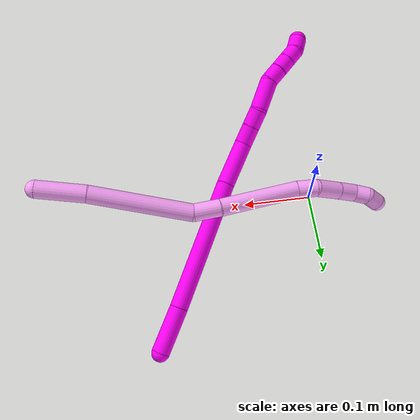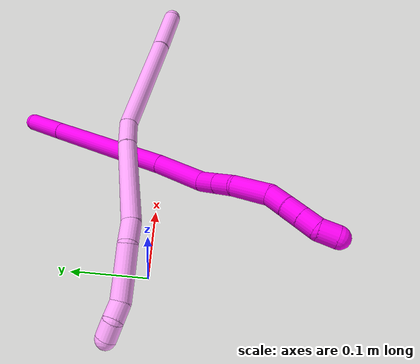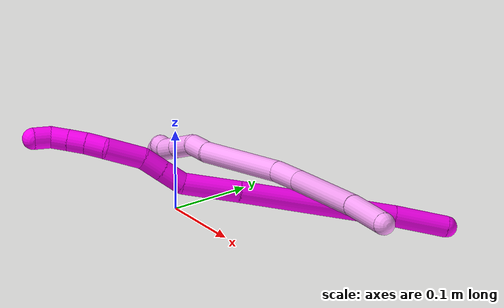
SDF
<sdf version="1.7">
 <world name="default">
  <model name="4">
   <static>0</static>
   <link name="4">
    <collision name="collision-cylinder-e_1_1_4">
     <pose>-0.001959 0.001159 -0.034465 -3.10797 -0.056756 2.07213</pose>
     <geometry><cylinder><radius>0.0125</radius><length>0.069081</length></cylinder></geometry>
     <surface>
      <friction><ode><mu>1.16</mu><mu2>1.16</mu2><slip1>0</slip1><slip2>0</slip2></ode></friction>
      <contact><ode><kp>1e+06</kp><kd>1</kd><max_vel>0</max_vel><min_depth>0.001</min_depth></ode></contact>
     </surface>
    </collision>
    <visual name="visual-cylinder-e_1_1_4">
     <pose>-0.001959 0.001159 -0.034465 -3.10797 -0.056756 2.07213</pose>
     <geometry><cylinder><radius>0.0125</radius><length>0.069081</length></cylinder></geometry>
     <material><ambient>1 0.65098 0.996078 1</ambient></material>
    </visual>
    <collision name="collision-cylinder-e_2_4_5">
     <pose>-0.003462 0.01091 -0.140847 -3.02269 0.006311 -0.105933</pose>
     <geometry><cylinder><radius>0.0125</radius><length>0.144857</length></cylinder></geometry>
     <surface>
      <friction><ode><mu>1.16</mu><mu2>1.16</mu2><slip1>0</slip1><slip2>0</slip2></ode></friction>
      <contact><ode><kp>1e+06</kp><kd>1</kd><max_vel>0</max_vel><min_depth>0.001</min_depth></ode></contact>
     </surface>
    </collision>
    <visual name="visual-cylinder-e_2_4_5">
     <pose>-0.003462 0.01091 -0.140847 -3.02269 0.006311 -0.105933</pose>
     <geometry><cylinder><radius>0.0125</radius><length>0.144857</length></cylinder></geometry>
     <material><ambient>1 0.65098 0.996078 1</ambient></material>
    </visual>
    <collision name="collision-cylinder-e_3_5_6">
     <pose>-0.003059 0.014964 -0.231105 2.89907 -0.002868 -0.023535</pose>
     <geometry><cylinder><radius>0.0125</radius><length>0.037791</length></cylinder></geometry>
     <surface>
      <friction><ode><mu>1.16</mu><mu2>1.16</mu2><slip1>0</slip1><slip2>0</slip2></ode></friction>
      <contact><ode><kp>1e+06</kp><kd>1</kd><max_vel>0</max_vel><min_depth>0.001</min_depth></ode></contact>
     </surface>
    </collision>
    <visual name="visual-cylinder-e_3_5_6">
     <pose>-0.003059 0.014964 -0.231105 2.89907 -0.002868 -0.023535</pose>
     <geometry><cylinder><radius>0.0125</radius><length>0.037791</length></cylinder></geometry>
     <material><ambient>1 0.65098 0.996078 1</ambient></material>
    </visual>
    <collision name="collision-cylinder-e_4_6_7">
     <pose>0.002883 -0.00504 -0.303973 2.8652 0.105405 0.725036</pose>
     <geometry><cylinder><radius>0.0125</radius><length>0.113987</length></cylinder></geometry>
     <surface>
      <friction><ode><mu>1.16</mu><mu2>1.16</mu2><slip1>0</slip1><slip2>0</slip2></ode></friction>
      <contact><ode><kp>1e+06</kp><kd>1</kd><max_vel>0</max_vel><min_depth>0.001</min_depth></ode></contact>
     </surface>
    </collision>
    <visual name="visual-cylinder-e_4_6_7">
     <pose>0.002883 -0.00504 -0.303973 2.8652 0.105405 0.725036</pose>
     <geometry><cylinder><radius>0.0125</radius><length>0.113987</length></cylinder></geometry>
     <material><ambient>1 0.65098 0.996078 1</ambient></material>
    </visual>
    <collision name="collision-cylinder-e_5_7_8">
     <pose>0.008246 -0.022665 -0.372652 2.99023 -0.044212 -0.567429</pose>
     <geometry><cylinder><radius>0.0125</radius><length>0.028661</length></cylinder></geometry>
     <surface>
      <friction><ode><mu>1.16</mu><mu2>1.16</mu2><slip1>0</slip1><slip2>0</slip2></ode></friction>
      <contact><ode><kp>1e+06</kp><kd>1</kd><max_vel>0</max_vel><min_depth>0.001</min_depth></ode></contact>
     </surface>
    </collision>
    <visual name="visual-cylinder-e_5_7_8">
     <pose>0.008246 -0.022665 -0.372652 2.99023 -0.044212 -0.567429</pose>
     <geometry><cylinder><radius>0.0125</radius><length>0.028661</length></cylinder></geometry>
     <material><ambient>1 0.65098 0.996078 1</ambient></material>
    </visual>
    <collision name="collision-cylinder-e_6_8_9">
     <pose>0.012959 -0.023766 -0.404096 -3.08052 0.299349 -2.7419</pose>
     <geometry><cylinder><radius>0.0125</radius><length>0.036258</length></cylinder></geometry>
     <surface>
      <friction><ode><mu>1.16</mu><mu2>1.16</mu2><slip1>0</slip1><slip2>0</slip2></ode></friction>
      <contact><ode><kp>1e+06</kp><kd>1</kd><max_vel>0</max_vel><min_depth>0.001</min_depth></ode></contact>
     </surface>
    </collision>
    <visual name="visual-cylinder-e_6_8_9">
     <pose>0.012959 -0.023766 -0.404096 -3.08052 0.299349 -2.7419</pose>
     <geometry><cylinder><radius>0.0125</radius><length>0.036258</length></cylinder></geometry>
     <material><ambient>1 0.65098 0.996078 1</ambient></material>
    </visual>
    <collision name="collision-cylinder-e_7_9_10">
     <pose>0.0223 -0.021784 -0.434764 -3.07258 0.289531 -2.6766</pose>
     <geometry><cylinder><radius>0.0125</radius><length>0.027985</length></cylinder></geometry>
     <surface>
      <friction><ode><mu>1.16</mu><mu2>1.16</mu2><slip1>0</slip1><slip2>0</slip2></ode></friction>
      <contact><ode><kp>1e+06</kp><kd>1</kd><max_vel>0</max_vel><min_depth>0.001</min_depth></ode></contact>
     </surface>
    </collision>
    <visual name="visual-cylinder-e_7_9_10">
     <pose>0.0223 -0.021784 -0.434764 -3.07258 0.289531 -2.6766</pose>
     <geometry><cylinder><radius>0.0125</radius><length>0.027985</length></cylinder></geometry>
     <material><ambient>1 0.65098 0.996078 1</ambient></material>
    </visual>
    <collision name="collision-cylinder-e_8_10_11">
     <pose>0.025591 -0.019331 -0.458492 -2.99495 -0.067179 0.858086</pose>
     <geometry><cylinder><radius>0.0125</radius><length>0.020972</length></cylinder></geometry>
     <surface>
      <friction><ode><mu>1.16</mu><mu2>1.16</mu2><slip1>0</slip1><slip2>0</slip2></ode></friction>
      <contact><ode><kp>1e+06</kp><kd>1</kd><max_vel>0</max_vel><min_depth>0.001</min_depth></ode></contact>
     </surface>
    </collision>
    <visual name="visual-cylinder-e_8_10_11">
     <pose>0.025591 -0.019331 -0.458492 -2.99495 -0.067179 0.858086</pose>
     <geometry><cylinder><radius>0.0125</radius><length>0.020972</length></cylinder></geometry>
     <material><ambient>1 0.65098 0.996078 1</ambient></material>
    </visual>
    <collision name="collision-cylinder-e_9_11_2">
     <pose>0.028324 -0.013405 -0.477385 -2.66621 0.343466 -1.24263</pose>
     <geometry><cylinder><radius>0.0125</radius><length>0.020408</length></cylinder></geometry>
     <surface>
      <friction><ode><mu>1.16</mu><mu2>1.16</mu2><slip1>0</slip1><slip2>0</slip2></ode></friction>
      <contact><ode><kp>1e+06</kp><kd>1</kd><max_vel>0</max_vel><min_depth>0.001</min_depth></ode></contact>
     </surface>
    </collision>
    <visual name="visual-cylinder-e_9_11_2">
     <pose>0.028324 -0.013405 -0.477385 -2.66621 0.343466 -1.24263</pose>
     <geometry><cylinder><radius>0.0125</radius><length>0.020408</length></cylinder></geometry>
     <material><ambient>1 0.65098 0.996078 1</ambient></material>
    </visual>
    <collision name="collision-sphere-2">
     <pose>0.03176 -0.009008 -0.485928 0 -0 0</pose>
     <geometry><sphere><radius>0.0125</radius></sphere></geometry>
     <surface>
      <friction><ode><mu>1.16</mu><mu2>1.16</mu2><slip1>0</slip1><slip2>0</slip2></ode></friction>
      <contact><ode><kp>1e+06</kp><kd>1</kd><max_vel>0</max_vel><min_depth>0.001</min_depth></ode></contact>
     </surface>
    </collision>
    <visual name="visual-sphere-2">
     <pose>0.03176 -0.009008 -0.485928 0 -0 0</pose>
     <geometry><sphere><radius>0.0125</radius></sphere></geometry>
     <material><ambient>1 0.65098 0.996078 1</ambient></material>
    </visual>
    <collision name="collision-sphere-11">
     <pose>0.024887 -0.017802 -0.468842 0 -0 0</pose>
     <geometry><sphere><radius>0.0125</radius></sphere></geometry>
     <surface>
      <friction><ode><mu>1.16</mu><mu2>1.16</mu2><slip1>0</slip1><slip2>0</slip2></ode></friction>
      <contact><ode><kp>1e+06</kp><kd>1</kd><max_vel>0</max_vel><min_depth>0.001</min_depth></ode></contact>
     </surface>
    </collision>
    <visual name="visual-sphere-11">
     <pose>0.024887 -0.017802 -0.468842 0 -0 0</pose>
     <geometry><sphere><radius>0.0125</radius></sphere></geometry>
     <material><ambient>1 0.65098 0.996078 1</ambient></material>
    </visual>
    <collision name="collision-sphere-10">
     <pose>0.026295 -0.02086 -0.448142 0 -0 0</pose>
     <geometry><sphere><radius>0.0125</radius></sphere></geometry>
     <surface>
      <friction><ode><mu>1.16</mu><mu2>1.16</mu2><slip1>0</slip1><slip2>0</slip2></ode></friction>
      <contact><ode><kp>1e+06</kp><kd>1</kd><max_vel>0</max_vel><min_depth>0.001</min_depth></ode></contact>
     </surface>
    </collision>
    <visual name="visual-sphere-10">
     <pose>0.026295 -0.02086 -0.448142 0 -0 0</pose>
     <geometry><sphere><radius>0.0125</radius></sphere></geometry>
     <material><ambient>1 0.65098 0.996078 1</ambient></material>
    </visual>
    <collision name="collision-sphere-9">
     <pose>0.018305 -0.022709 -0.421386 0 -0 0</pose>
     <geometry><sphere><radius>0.0125</radius></sphere></geometry>
     <surface>
      <friction><ode><mu>1.16</mu><mu2>1.16</mu2><slip1>0</slip1><slip2>0</slip2></ode></friction>
      <contact><ode><kp>1e+06</kp><kd>1</kd><max_vel>0</max_vel><min_depth>0.001</min_depth></ode></contact>
     </surface>
    </collision>
    <visual name="visual-sphere-9">
     <pose>0.018305 -0.022709 -0.421386 0 -0 0</pose>
     <geometry><sphere><radius>0.0125</radius></sphere></geometry>
     <material><ambient>1 0.65098 0.996078 1</ambient></material>
    </visual>
    <collision name="collision-sphere-4">
     <pose>-0.003919 0.002318 -0.068931 0 -0 0</pose>
     <geometry><sphere><radius>0.0125</radius></sphere></geometry>
     <surface>
      <friction><ode><mu>1.16</mu><mu2>1.16</mu2><slip1>0</slip1><slip2>0</slip2></ode></friction>
      <contact><ode><kp>1e+06</kp><kd>1</kd><max_vel>0</max_vel><min_depth>0.001</min_depth></ode></contact>
     </surface>
    </collision>
    <visual name="visual-sphere-4">
     <pose>-0.003919 0.002318 -0.068931 0 -0 0</pose>
     <geometry><sphere><radius>0.0125</radius></sphere></geometry>
     <material><ambient>1 0.65098 0.996078 1</ambient></material>
    </visual>
    <collision name="collision-sphere-1">
     <geometry><sphere><radius>0.0125</radius></sphere></geometry>
     <surface>
      <friction><ode><mu>1.16</mu><mu2>1.16</mu2><slip1>0</slip1><slip2>0</slip2></ode></friction>
      <contact><ode><kp>1e+06</kp><kd>1</kd><max_vel>0</max_vel><min_depth>0.001</min_depth></ode></contact>
     </surface>
    </collision>
    <visual name="visual-sphere-1">
     <geometry><sphere><radius>0.0125</radius></sphere></geometry>
     <material><ambient>1 0.65098 0.996078 1</ambient></material>
    </visual>
    <collision name="collision-sphere-8">
     <pose>0.007613 -0.024824 -0.386805 0 -0 0</pose>
     <geometry><sphere><radius>0.0125</radius></sphere></geometry>
     <surface>
      <friction><ode><mu>1.16</mu><mu2>1.16</mu2><slip1>0</slip1><slip2>0</slip2></ode></friction>
      <contact><ode><kp>1e+06</kp><kd>1</kd><max_vel>0</max_vel><min_depth>0.001</min_depth></ode></contact>
     </surface>
    </collision>
    <visual name="visual-sphere-8">
     <pose>0.007613 -0.024824 -0.386805 0 -0 0</pose>
     <geometry><sphere><radius>0.0125</radius></sphere></geometry>
     <material><ambient>1 0.65098 0.996078 1</ambient></material>
    </visual>
    <collision name="collision-sphere-5">
     <pose>-0.003004 0.019502 -0.212763 0 -0 0</pose>
     <geometry><sphere><radius>0.0125</radius></sphere></geometry>
     <surface>
      <friction><ode><mu>1.16</mu><mu2>1.16</mu2><slip1>0</slip1><slip2>0</slip2></ode></friction>
      <contact><ode><kp>1e+06</kp><kd>1</kd><max_vel>0</max_vel><min_depth>0.001</min_depth></ode></contact>
     </surface>
    </collision>
    <visual name="visual-sphere-5">
     <pose>-0.003004 0.019502 -0.212763 0 -0 0</pose>
     <geometry><sphere><radius>0.0125</radius></sphere></geometry>
     <material><ambient>1 0.65098 0.996078 1</ambient></material>
    </visual>
    <collision name="collision-sphere-6">
     <pose>-0.003113 0.010427 -0.249447 0 -0 0</pose>
     <geometry><sphere><radius>0.0125</radius></sphere></geometry>
     <surface>
      <friction><ode><mu>1.16</mu><mu2>1.16</mu2><slip1>0</slip1><slip2>0</slip2></ode></friction>
      <contact><ode><kp>1e+06</kp><kd>1</kd><max_vel>0</max_vel><min_depth>0.001</min_depth></ode></contact>
     </surface>
    </collision>
    <visual name="visual-sphere-6">
     <pose>-0.003113 0.010427 -0.249447 0 -0 0</pose>
     <geometry><sphere><radius>0.0125</radius></sphere></geometry>
     <material><ambient>1 0.65098 0.996078 1</ambient></material>
    </visual>
    <collision name="collision-sphere-7">
     <pose>0.00888 -0.020506 -0.358499 0 -0 0</pose>
     <geometry><sphere><radius>0.0125</radius></sphere></geometry>
     <surface>
      <friction><ode><mu>1.16</mu><mu2>1.16</mu2><slip1>0</slip1><slip2>0</slip2></ode></friction>
      <contact><ode><kp>1e+06</kp><kd>1</kd><max_vel>0</max_vel><min_depth>0.001</min_depth></ode></contact>
     </surface>
    </collision>
    <visual name="visual-sphere-7">
     <pose>0.00888 -0.020506 -0.358499 0 -0 0</pose>
     <geometry><sphere><radius>0.0125</radius></sphere></geometry>
     <material><ambient>1 0.65098 0.996078 1</ambient></material>
    </visual>
    <inertial>
     <pose>0.004043 -0.002297 -0.246046 0 -0 0</pose>
     <mass>0.5</mass>
     <inertia>
      <ixx>0.000422</ixx>
      <ixy>0</ixy>
      <ixz>0</ixz>
      <iyy>-0.000255</iyy>
      <iyz>0</iyz>
      <izz>-5.1e-05</izz>
     </inertia>
    </inertial>
   </link>
   <pose>0.386717 0.002749 0.12776 -1.28291 1.03594 -1.44156</pose>
  </model>
  <model name="10">
   <static>0</static>
   <link name="10">
    <collision name="collision-cylinder-e_1_1_4">
     <pose>-0.031128 0.00133 0.007953 -0.165705 -1.31734 0.128369</pose>
     <geometry><cylinder><radius>0.0125</radius><length>0.06431</length></cylinder></geometry>
     <surface>
      <friction><ode><mu>1.16</mu><mu2>1.16</mu2><slip1>0</slip1><slip2>0</slip2></ode></friction>
      <contact><ode><kp>1e+06</kp><kd>1</kd><max_vel>0</max_vel><min_depth>0.001</min_depth></ode></contact>
     </surface>
    </collision>
    <visual name="visual-cylinder-e_1_1_4">
     <pose>-0.031128 0.00133 0.007953 -0.165705 -1.31734 0.128369</pose>
     <geometry><cylinder><radius>0.0125</radius><length>0.06431</length></cylinder></geometry>
     <material><ambient>1 0 0.964706 1</ambient></material>
    </visual>
    <collision name="collision-cylinder-e_2_4_5">
     <pose>-0.152329 0.009937 0.036268 -0.34323 -1.33519 0.271589</pose>
     <geometry><cylinder><radius>0.0125</radius><length>0.185265</length></cylinder></geometry>
     <surface>
      <friction><ode><mu>1.16</mu><mu2>1.16</mu2><slip1>0</slip1><slip2>0</slip2></ode></friction>
      <contact><ode><kp>1e+06</kp><kd>1</kd><max_vel>0</max_vel><min_depth>0.001</min_depth></ode></contact>
     </surface>
    </collision>
    <visual name="visual-cylinder-e_2_4_5">
     <pose>-0.152329 0.009937 0.036268 -0.34323 -1.33519 0.271589</pose>
     <geometry><cylinder><radius>0.0125</radius><length>0.185265</length></cylinder></geometry>
     <material><ambient>1 0 0.964706 1</ambient></material>
    </visual>
    <collision name="collision-cylinder-e_3_5_6">
     <pose>-0.274416 0.020679 0.065502 -0.37232 -1.28162 0.279103</pose>
     <geometry><cylinder><radius>0.0125</radius><length>0.066802</length></cylinder></geometry>
     <surface>
      <friction><ode><mu>1.16</mu><mu2>1.16</mu2><slip1>0</slip1><slip2>0</slip2></ode></friction>
      <contact><ode><kp>1e+06</kp><kd>1</kd><max_vel>0</max_vel><min_depth>0.001</min_depth></ode></contact>
     </surface>
    </collision>
    <visual name="visual-cylinder-e_3_5_6">
     <pose>-0.274416 0.020679 0.065502 -0.37232 -1.28162 0.279103</pose>
     <geometry><cylinder><radius>0.0125</radius><length>0.066802</length></cylinder></geometry>
     <material><ambient>1 0 0.964706 1</ambient></material>
    </visual>
    <collision name="collision-cylinder-e_4_6_7">
     <pose>-0.319224 0.019738 0.078399 0.83068 -1.13437 -0.547713</pose>
     <geometry><cylinder><radius>0.0125</radius><length>0.028234</length></cylinder></geometry>
     <surface>
      <friction><ode><mu>1.16</mu><mu2>1.16</mu2><slip1>0</slip1><slip2>0</slip2></ode></friction>
      <contact><ode><kp>1e+06</kp><kd>1</kd><max_vel>0</max_vel><min_depth>0.001</min_depth></ode></contact>
     </surface>
    </collision>
    <visual name="visual-cylinder-e_4_6_7">
     <pose>-0.319224 0.019738 0.078399 0.83068 -1.13437 -0.547713</pose>
     <geometry><cylinder><radius>0.0125</radius><length>0.028234</length></cylinder></geometry>
     <material><ambient>1 0 0.964706 1</ambient></material>
    </visual>
    <collision name="collision-cylinder-e_5_7_8">
     <pose>-0.343766 0.011231 0.086155 0.832478 -1.12984 -0.546377</pose>
     <geometry><cylinder><radius>0.0125</radius><length>0.025981</length></cylinder></geometry>
     <surface>
      <friction><ode><mu>1.16</mu><mu2>1.16</mu2><slip1>0</slip1><slip2>0</slip2></ode></friction>
      <contact><ode><kp>1e+06</kp><kd>1</kd><max_vel>0</max_vel><min_depth>0.001</min_depth></ode></contact>
     </surface>
    </collision>
    <visual name="visual-cylinder-e_5_7_8">
     <pose>-0.343766 0.011231 0.086155 0.832478 -1.12984 -0.546377</pose>
     <geometry><cylinder><radius>0.0125</radius><length>0.025981</length></cylinder></geometry>
     <material><ambient>1 0 0.964706 1</ambient></material>
    </visual>
    <collision name="collision-cylinder-e_6_8_9">
     <pose>-0.377584 0.006507 0.094609 0.131235 -1.35823 -0.105986</pose>
     <geometry><cylinder><radius>0.0125</radius><length>0.045157</length></cylinder></geometry>
     <surface>
      <friction><ode><mu>1.16</mu><mu2>1.16</mu2><slip1>0</slip1><slip2>0</slip2></ode></friction>
      <contact><ode><kp>1e+06</kp><kd>1</kd><max_vel>0</max_vel><min_depth>0.001</min_depth></ode></contact>
     </surface>
    </collision>
    <visual name="visual-cylinder-e_6_8_9">
     <pose>-0.377584 0.006507 0.094609 0.131235 -1.35823 -0.105986</pose>
     <geometry><cylinder><radius>0.0125</radius><length>0.045157</length></cylinder></geometry>
     <material><ambient>1 0 0.964706 1</ambient></material>
    </visual>
    <collision name="collision-cylinder-e_7_9_10">
     <pose>-0.409314 0.00669 0.105329 -0.133706 -1.01116 0.074092</pose>
     <geometry><cylinder><radius>0.0125</radius><length>0.022797</length></cylinder></geometry>
     <surface>
      <friction><ode><mu>1.16</mu><mu2>1.16</mu2><slip1>0</slip1><slip2>0</slip2></ode></friction>
      <contact><ode><kp>1e+06</kp><kd>1</kd><max_vel>0</max_vel><min_depth>0.001</min_depth></ode></contact>
     </surface>
    </collision>
    <visual name="visual-cylinder-e_7_9_10">
     <pose>-0.409314 0.00669 0.105329 -0.133706 -1.01116 0.074092</pose>
     <geometry><cylinder><radius>0.0125</radius><length>0.022797</length></cylinder></geometry>
     <material><ambient>1 0 0.964706 1</ambient></material>
    </visual>
    <collision name="collision-cylinder-e_8_10_11">
     <pose>-0.42772 0.008917 0.116491 -0.268436 -1.02123 0.150991</pose>
     <geometry><cylinder><radius>0.0125</radius><length>0.020512</length></cylinder></geometry>
     <surface>
      <friction><ode><mu>1.16</mu><mu2>1.16</mu2><slip1>0</slip1><slip2>0</slip2></ode></friction>
      <contact><ode><kp>1e+06</kp><kd>1</kd><max_vel>0</max_vel><min_depth>0.001</min_depth></ode></contact>
     </surface>
    </collision>
    <visual name="visual-cylinder-e_8_10_11">
     <pose>-0.42772 0.008917 0.116491 -0.268436 -1.02123 0.150991</pose>
     <geometry><cylinder><radius>0.0125</radius><length>0.020512</length></cylinder></geometry>
     <material><ambient>1 0 0.964706 1</ambient></material>
    </visual>
    <collision name="collision-cylinder-e_9_11_12">
     <pose>-0.445184 0.011885 0.12678 -0.293181 -1.02019 0.16484</pose>
     <geometry><cylinder><radius>0.0125</radius><length>0.020461</length></cylinder></geometry>
     <surface>
      <friction><ode><mu>1.16</mu><mu2>1.16</mu2><slip1>0</slip1><slip2>0</slip2></ode></friction>
      <contact><ode><kp>1e+06</kp><kd>1</kd><max_vel>0</max_vel><min_depth>0.001</min_depth></ode></contact>
     </surface>
    </collision>
    <visual name="visual-cylinder-e_9_11_12">
     <pose>-0.445184 0.011885 0.12678 -0.293181 -1.02019 0.16484</pose>
     <geometry><cylinder><radius>0.0125</radius><length>0.020461</length></cylinder></geometry>
     <material><ambient>1 0 0.964706 1</ambient></material>
    </visual>
    <collision name="collision-cylinder-e_10_12_2">
     <pose>-0.463605 0.016463 0.133143 -1.18272 -1.24533 0.89848</pose>
     <geometry><cylinder><radius>0.0125</radius><length>0.020481</length></cylinder></geometry>
     <surface>
      <friction><ode><mu>1.16</mu><mu2>1.16</mu2><slip1>0</slip1><slip2>0</slip2></ode></friction>
      <contact><ode><kp>1e+06</kp><kd>1</kd><max_vel>0</max_vel><min_depth>0.001</min_depth></ode></contact>
     </surface>
    </collision>
    <visual name="visual-cylinder-e_10_12_2">
     <pose>-0.463605 0.016463 0.133143 -1.18272 -1.24533 0.89848</pose>
     <geometry><cylinder><radius>0.0125</radius><length>0.020481</length></cylinder></geometry>
     <material><ambient>1 0 0.964706 1</ambient></material>
    </visual>
    <collision name="collision-sphere-2">
     <pose>-0.473308 0.019494 0.134382 0 -0 0</pose>
     <geometry><sphere><radius>0.0125</radius></sphere></geometry>
     <surface>
      <friction><ode><mu>1.16</mu><mu2>1.16</mu2><slip1>0</slip1><slip2>0</slip2></ode></friction>
      <contact><ode><kp>1e+06</kp><kd>1</kd><max_vel>0</max_vel><min_depth>0.001</min_depth></ode></contact>
     </surface>
    </collision>
    <visual name="visual-sphere-2">
     <pose>-0.473308 0.019494 0.134382 0 -0 0</pose>
     <geometry><sphere><radius>0.0125</radius></sphere></geometry>
     <material><ambient>1 0 0.964706 1</ambient></material>
    </visual>
    <collision name="collision-sphere-12">
     <pose>-0.453902 0.013432 0.131904 0 -0 0</pose>
     <geometry><sphere><radius>0.0125</radius></sphere></geometry>
     <surface>
      <friction><ode><mu>1.16</mu><mu2>1.16</mu2><slip1>0</slip1><slip2>0</slip2></ode></friction>
      <contact><ode><kp>1e+06</kp><kd>1</kd><max_vel>0</max_vel><min_depth>0.001</min_depth></ode></contact>
     </surface>
    </collision>
    <visual name="visual-sphere-12">
     <pose>-0.453902 0.013432 0.131904 0 -0 0</pose>
     <geometry><sphere><radius>0.0125</radius></sphere></geometry>
     <material><ambient>1 0 0.964706 1</ambient></material>
    </visual>
    <collision name="collision-sphere-11">
     <pose>-0.436465 0.010338 0.121656 0 -0 0</pose>
     <geometry><sphere><radius>0.0125</radius></sphere></geometry>
     <surface>
      <friction><ode><mu>1.16</mu><mu2>1.16</mu2><slip1>0</slip1><slip2>0</slip2></ode></friction>
      <contact><ode><kp>1e+06</kp><kd>1</kd><max_vel>0</max_vel><min_depth>0.001</min_depth></ode></contact>
     </surface>
    </collision>
    <visual name="visual-sphere-11">
     <pose>-0.436465 0.010338 0.121656 0 -0 0</pose>
     <geometry><sphere><radius>0.0125</radius></sphere></geometry>
     <material><ambient>1 0 0.964706 1</ambient></material>
    </visual>
    <collision name="collision-sphere-10">
     <pose>-0.418974 0.007497 0.111326 0 -0 0</pose>
     <geometry><sphere><radius>0.0125</radius></sphere></geometry>
     <surface>
      <friction><ode><mu>1.16</mu><mu2>1.16</mu2><slip1>0</slip1><slip2>0</slip2></ode></friction>
      <contact><ode><kp>1e+06</kp><kd>1</kd><max_vel>0</max_vel><min_depth>0.001</min_depth></ode></contact>
     </surface>
    </collision>
    <visual name="visual-sphere-10">
     <pose>-0.418974 0.007497 0.111326 0 -0 0</pose>
     <geometry><sphere><radius>0.0125</radius></sphere></geometry>
     <material><ambient>1 0 0.964706 1</ambient></material>
    </visual>
    <collision name="collision-sphere-9">
     <pose>-0.399655 0.005883 0.099331 0 -0 0</pose>
     <geometry><sphere><radius>0.0125</radius></sphere></geometry>
     <surface>
      <friction><ode><mu>1.16</mu><mu2>1.16</mu2><slip1>0</slip1><slip2>0</slip2></ode></friction>
      <contact><ode><kp>1e+06</kp><kd>1</kd><max_vel>0</max_vel><min_depth>0.001</min_depth></ode></contact>
     </surface>
    </collision>
    <visual name="visual-sphere-9">
     <pose>-0.399655 0.005883 0.099331 0 -0 0</pose>
     <geometry><sphere><radius>0.0125</radius></sphere></geometry>
     <material><ambient>1 0 0.964706 1</ambient></material>
    </visual>
    <collision name="collision-sphere-4">
     <pose>-0.062256 0.00266 0.015905 0 -0 0</pose>
     <geometry><sphere><radius>0.0125</radius></sphere></geometry>
     <surface>
      <friction><ode><mu>1.16</mu><mu2>1.16</mu2><slip1>0</slip1><slip2>0</slip2></ode></friction>
      <contact><ode><kp>1e+06</kp><kd>1</kd><max_vel>0</max_vel><min_depth>0.001</min_depth></ode></contact>
     </surface>
    </collision>
    <visual name="visual-sphere-4">
     <pose>-0.062256 0.00266 0.015905 0 -0 0</pose>
     <geometry><sphere><radius>0.0125</radius></sphere></geometry>
     <material><ambient>1 0 0.964706 1</ambient></material>
    </visual>
    <collision name="collision-sphere-1">
     <geometry><sphere><radius>0.0125</radius></sphere></geometry>
     <surface>
      <friction><ode><mu>1.16</mu><mu2>1.16</mu2><slip1>0</slip1><slip2>0</slip2></ode></friction>
      <contact><ode><kp>1e+06</kp><kd>1</kd><max_vel>0</max_vel><min_depth>0.001</min_depth></ode></contact>
     </surface>
    </collision>
    <visual name="visual-sphere-1">
     <geometry><sphere><radius>0.0125</radius></sphere></geometry>
     <material><ambient>1 0 0.964706 1</ambient></material>
    </visual>
    <collision name="collision-sphere-8">
     <pose>-0.355514 0.00713 0.089887 0 -0 0</pose>
     <geometry><sphere><radius>0.0125</radius></sphere></geometry>
     <surface>
      <friction><ode><mu>1.16</mu><mu2>1.16</mu2><slip1>0</slip1><slip2>0</slip2></ode></friction>
      <contact><ode><kp>1e+06</kp><kd>1</kd><max_vel>0</max_vel><min_depth>0.001</min_depth></ode></contact>
     </surface>
    </collision>
    <visual name="visual-sphere-8">
     <pose>-0.355514 0.00713 0.089887 0 -0 0</pose>
     <geometry><sphere><radius>0.0125</radius></sphere></geometry>
     <material><ambient>1 0 0.964706 1</ambient></material>
    </visual>
    <collision name="collision-sphere-5">
     <pose>-0.242402 0.017214 0.05663 0 -0 0</pose>
     <geometry><sphere><radius>0.0125</radius></sphere></geometry>
     <surface>
      <friction><ode><mu>1.16</mu><mu2>1.16</mu2><slip1>0</slip1><slip2>0</slip2></ode></friction>
      <contact><ode><kp>1e+06</kp><kd>1</kd><max_vel>0</max_vel><min_depth>0.001</min_depth></ode></contact>
     </surface>
    </collision>
    <visual name="visual-sphere-5">
     <pose>-0.242402 0.017214 0.05663 0 -0 0</pose>
     <geometry><sphere><radius>0.0125</radius></sphere></geometry>
     <material><ambient>1 0 0.964706 1</ambient></material>
    </visual>
    <collision name="collision-sphere-6">
     <pose>-0.30643 0.024144 0.074375 0 -0 0</pose>
     <geometry><sphere><radius>0.0125</radius></sphere></geometry>
     <surface>
      <friction><ode><mu>1.16</mu><mu2>1.16</mu2><slip1>0</slip1><slip2>0</slip2></ode></friction>
      <contact><ode><kp>1e+06</kp><kd>1</kd><max_vel>0</max_vel><min_depth>0.001</min_depth></ode></contact>
     </surface>
    </collision>
    <visual name="visual-sphere-6">
     <pose>-0.30643 0.024144 0.074375 0 -0 0</pose>
     <geometry><sphere><radius>0.0125</radius></sphere></geometry>
     <material><ambient>1 0 0.964706 1</ambient></material>
    </visual>
    <collision name="collision-sphere-7">
     <pose>-0.332018 0.015331 0.082423 0 -0 0</pose>
     <geometry><sphere><radius>0.0125</radius></sphere></geometry>
     <surface>
      <friction><ode><mu>1.16</mu><mu2>1.16</mu2><slip1>0</slip1><slip2>0</slip2></ode></friction>
      <contact><ode><kp>1e+06</kp><kd>1</kd><max_vel>0</max_vel><min_depth>0.001</min_depth></ode></contact>
     </surface>
    </collision>
    <visual name="visual-sphere-7">
     <pose>-0.332018 0.015331 0.082423 0 -0 0</pose>
     <geometry><sphere><radius>0.0125</radius></sphere></geometry>
     <material><ambient>1 0 0.964706 1</ambient></material>
    </visual>
    <inertial>
     <pose>-0.240516 0.010733 0.060884 0 -0 0</pose>
     <mass>0.5</mass>
     <inertia>
      <ixx>0.00014</ixx>
      <ixy>0</ixy>
      <ixz>0</ixz>
      <iyy>0.000644</iyy>
      <iyz>0</iyz>
      <izz>0.000558</izz>
     </inertia>
    </inertial>
   </link>
   <pose>0.246338 0.210956 0.011494 -1.61983 0.32855 1.30125</pose>
  </model>
 </world>
</sdf>
